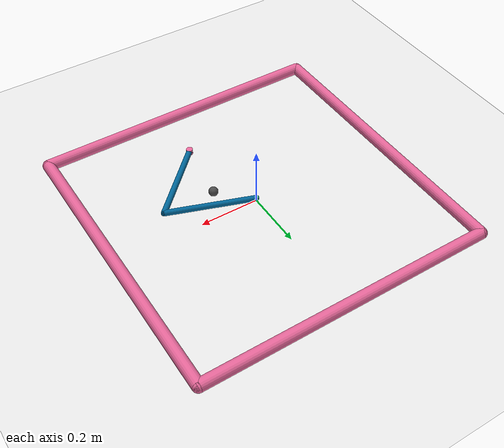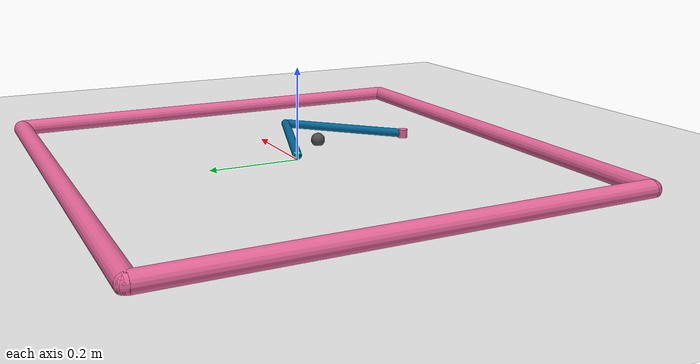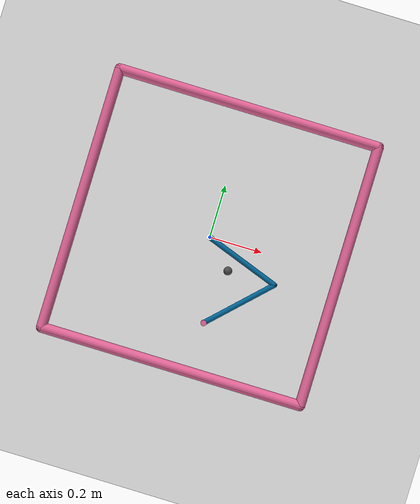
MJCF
<mujoco model="reacher">
	<compiler angle="radian" inertiafromgeom="true"/>
	<default>
		<joint armature="1" damping="1" limited="true"/>
		<geom contype="0" friction="1 0.1 0.1" rgba="0.7 0.7 0 1"/>
	</default>
	<option gravity="0 0 -9.81" integrator="RK4" timestep="0.07"/>
	<worldbody>
		<!-- Arena -->
		<geom conaffinity="0" contype="0" name="ground" pos="0 0 0" rgba="0.9 0.9 0.9 1" size="1 1 10" type="plane"/>
		<geom conaffinity="0" fromto="-.5 -.5 .01  .5 -.5 .01" name="sideS" rgba="0.9 0.4 0.6 1" size=".02" type="capsule"/>
		<geom conaffinity="0" fromto=" .5 -.5 .01  .5  .5 .01" name="sideE" rgba="0.9 0.4 0.6 1" size=".02" type="capsule"/>
		<geom conaffinity="0" fromto="-.5  .5 .01  .5  .5 .01" name="sideN" rgba="0.9 0.4 0.6 1" size=".02" type="capsule"/>
		<geom conaffinity="0" fromto="-.5 -.5 .01 -.5  .5 .01" name="sideW" rgba="0.9 0.4 0.6 1" size=".02" type="capsule"/>
		<!-- Arm -->
		<geom conaffinity="0" contype="0" fromto="0.07 -0.31 0 0.07 -0.31 0.02" name="root" rgba="0.9 0.4 0.6 1" size=".011" type="cylinder"/>
		<body name="body0" pos="0.07 -0.31 0.01">
			<geom fromto="0 0 0 0.21 0.21 0" name="link0" rgba="0.0 0.4 0.6 1" size=".01" mass="1.7" type="capsule"/>
			<joint axis="0 0 1" limited="true" range="-0.7 0.7" name="joint0" pos="0 0 0" type="hinge"/>
			<body name="body1" pos="0.21 0.21 0">
				<geom fromto="0 0 0 -0.28 0.1 0" name="link1" rgba="0.0 0.4 0.6 1" size=".01" mass="1.3" type="capsule"/>
				<joint axis="0 0 1" limited="true" range="-1.9 0.78" name="joint1" pos="0 0 0" type="hinge"/>
				<body name="fingertip" pos="-0.28 0.1 0">
					<geom contype="0" name="fingertip" pos="0 0 0" rgba="0.0 0.8 0.6 1" size=".01" mass="0.2" type="sphere"/>
				</body>
			</body>
		</body>
		<!-- Target -->
		<body name="target" pos=".1 -.1 .01">
			<joint armature="0" axis="1 0 0" damping="0" limited="false" name="target_x" pos="0 0 0" stiffness="0" ref=".1" type="slide"/>
			<joint armature="0" axis="0 1 0" damping="0" limited="false" name="target_y" pos="0 0 0" stiffness="0" ref="-.1" type="slide"/>
			<geom conaffinity="0" contype="0" name="target" pos="0 0 0" rgba="0.3 0.3 0.3 1" size=".016" type="sphere"/>
		</body>
	</worldbody>
	<actuator>
		<motor ctrllimited="true" ctrlrange="-0.2 0.2" gear="5.0" joint="joint0"/>
		<motor ctrllimited="true" ctrlrange="-0.2 0.2" gear="5.0" joint="joint1"/>
	</actuator>
</mujoco>
